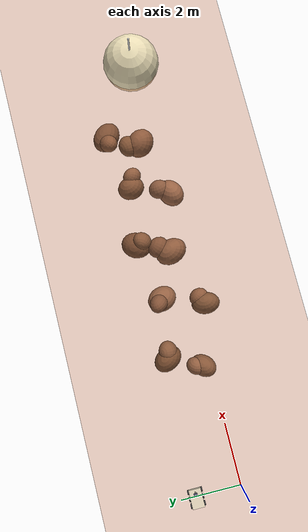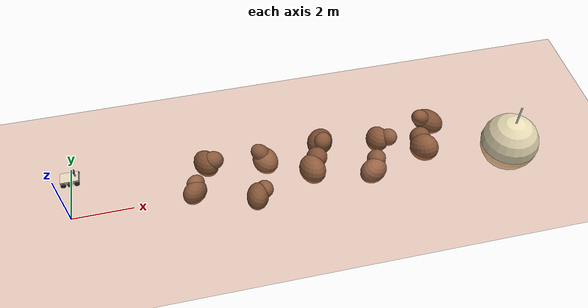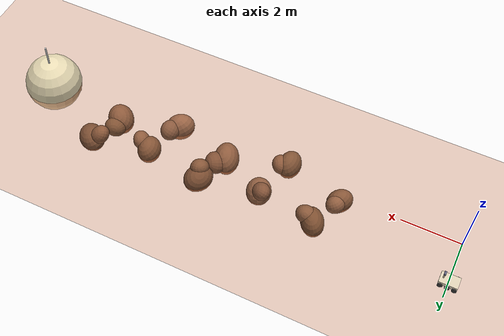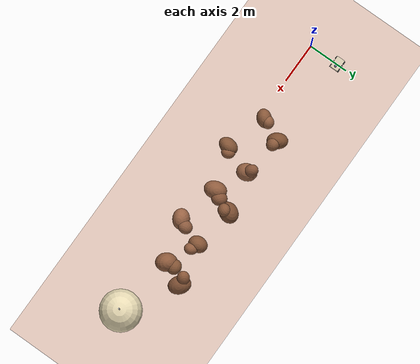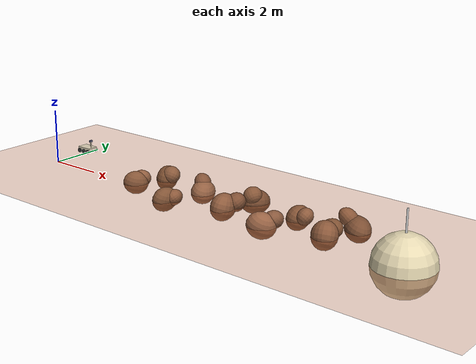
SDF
<sdf version="1.9">
 <world name="mars_mission">
  <plugin filename="gz-sim-physics-system" name="gz::sim::systems::Physics"/>
  <plugin filename="gz-sim-user-commands-system" name="gz::sim::systems::UserCommands"/>
  <plugin filename="gz-sim-scene-broadcaster-system" name="gz::sim::systems::SceneBroadcaster"/>
  <plugin filename="gz-sim-sensors-system" name="gz::sim::systems::Sensors">
   <render_engine>ogre2</render_engine>
  </plugin>
  <plugin filename="gz-sim-imu-system" name="gz::sim::systems::Imu"/>
  <plugin filename="gz-sim-contact-system" name="gz::sim::systems::Contact"/>
  <physics name="1ms" type="ignored">
   <max_step_size>0.001</max_step_size>
   <real_time_factor>1.0</real_time_factor>
   <real_time_update_rate>1000</real_time_update_rate>
  </physics>
  <scene>
   <ambient>0.3 0.2 0.15 1</ambient>
   <background>0.55 0.35 0.25 1</background>
   <sky><time>10</time><sunrise>6</sunrise><sunset>20</sunset></sky>
  </scene>
  <light type="directional" name="sun">
   <pose>15 -10 20 0 0.5 -0.5</pose>
   <diffuse>0.95 0.9 0.8 1</diffuse>
   <specular>0.3 0.3 0.3 1</specular>
   <direction>-0.5 0.3 -0.8</direction>
   <attenuation>
    <range>1000</range>
    <constant>0.9</constant>
    <linear>0.01</linear>
    <quadratic>0.001</quadratic>
   </attenuation>
  </light>
  <model name="mars_ground">
   <static>true</static>
   <link name="ground_link">
    <collision name="ground_collision">
     <geometry><plane><normal>0 0 1</normal><size>100 100</size></plane></geometry>
     <surface><friction><ode><mu>0.9</mu><mu2>0.9</mu2></ode></friction></surface>
    </collision>
    <visual name="ground_visual">
     <geometry><plane><normal>0 0 1</normal><size>100 100</size></plane></geometry>
     <material>
      <ambient>0.6 0.3 0.15 1</ambient>
      <diffuse>0.7 0.35 0.18 1</diffuse>
      <specular>0.05 0.05 0.05 1</specular>
     </material>
    </visual>
   </link>
  </model>
  <include><uri>model://habitat_dome</uri><name>habitat_dome</name><pose>15 0 0 0 0 0</pose></include>
  <model name="rock_01">
   <static>true</static>
   <pose>4.0 0.2 0 0.1 0.2 0.8</pose>
   <link name="rock_link">
    <visual name="blob_1">
     <geometry><ellipsoid><radii>0.45 0.35 0.42</radii></ellipsoid></geometry>
     <material><ambient>0.48 0.30 0.18 1</ambient><diffuse>0.53 0.34 0.22 1</diffuse></material>
    </visual>
    <collision name="blob_1_col">
     <geometry><ellipsoid><radii>0.45 0.35 0.42</radii></ellipsoid></geometry>
    </collision>
    <visual name="blob_2">
     <pose>0.2 0.15 0.15 0.4 0.1 0</pose>
     <geometry><ellipsoid><radii>0.32 0.28 0.30</radii></ellipsoid></geometry>
     <material><ambient>0.52 0.33 0.21 1</ambient><diffuse>0.57 0.37 0.25 1</diffuse></material>
    </visual>
    <collision name="blob_2_col">
     <pose>0.2 0.15 0.15 0.4 0.1 0</pose>
     <geometry><ellipsoid><radii>0.32 0.28 0.30</radii></ellipsoid></geometry>
    </collision>
   </link>
  </model>
  <model name="rock_02">
   <static>true</static>
   <pose>4.5 1.3 0 0.2 0.1 2.1</pose>
   <link name="rock_link">
    <visual name="blob_1">
     <geometry><ellipsoid><radii>0.50 0.38 0.45</radii></ellipsoid></geometry>
     <material><ambient>0.44 0.27 0.15 1</ambient><diffuse>0.49 0.31 0.19 1</diffuse></material>
    </visual>
    <collision name="blob_1_col">
     <geometry><ellipsoid><radii>0.50 0.38 0.45</radii></ellipsoid></geometry>
    </collision>
    <visual name="blob_2">
     <pose>-0.2 -0.15 0.2 0.5 0.2 1.0</pose>
     <geometry><ellipsoid><radii>0.35 0.30 0.32</radii></ellipsoid></geometry>
     <material><ambient>0.49 0.31 0.19 1</ambient><diffuse>0.54 0.35 0.23 1</diffuse></material>
    </visual>
    <collision name="blob_2_col">
     <pose>-0.2 -0.15 0.2 0.5 0.2 1.0</pose>
     <geometry><ellipsoid><radii>0.35 0.30 0.32</radii></ellipsoid></geometry>
    </collision>
   </link>
  </model>
  <model name="rock_03">
   <static>true</static>
   <pose>6.0 -0.4 0 0.3 0.15 1.5</pose>
   <link name="rock_link">
    <visual name="blob_1">
     <geometry><ellipsoid><radii>0.48 0.36 0.44</radii></ellipsoid></geometry>
     <material><ambient>0.46 0.29 0.17 1</ambient><diffuse>0.51 0.33 0.21 1</diffuse></material>
    </visual>
    <collision name="blob_1_col">
     <geometry><ellipsoid><radii>0.48 0.36 0.44</radii></ellipsoid></geometry>
    </collision>
    <visual name="blob_2">
     <pose>0.18 -0.2 0.18 0.6 0.3 0.5</pose>
     <geometry><ellipsoid><radii>0.33 0.27 0.30</radii></ellipsoid></geometry>
     <material><ambient>0.50 0.31 0.19 1</ambient><diffuse>0.55 0.35 0.23 1</diffuse></material>
    </visual>
    <collision name="blob_2_col">
     <pose>0.18 -0.2 0.18 0.6 0.3 0.5</pose>
     <geometry><ellipsoid><radii>0.33 0.27 0.30</radii></ellipsoid></geometry>
    </collision>
   </link>
  </model>
  <model name="rock_04">
   <static>true</static>
   <pose>6.5 1.0 0 0.15 0.3 0.4</pose>
   <link name="rock_link">
    <visual name="blob_1">
     <geometry><ellipsoid><radii>0.42 0.50 0.40</radii></ellipsoid></geometry>
     <material><ambient>0.53 0.34 0.22 1</ambient><diffuse>0.58 0.38 0.26 1</diffuse></material>
    </visual>
    <collision name="blob_1_col">
     <geometry><ellipsoid><radii>0.42 0.50 0.40</radii></ellipsoid></geometry>
    </collision>
    <visual name="blob_2">
     <pose>-0.15 0.22 0.22 0.3 0.5 0.8</pose>
     <geometry><ellipsoid><radii>0.30 0.35 0.28</radii></ellipsoid></geometry>
     <material><ambient>0.47 0.29 0.18 1</ambient><diffuse>0.52 0.33 0.22 1</diffuse></material>
    </visual>
    <collision name="blob_2_col">
     <pose>-0.15 0.22 0.22 0.3 0.5 0.8</pose>
     <geometry><ellipsoid><radii>0.30 0.35 0.28</radii></ellipsoid></geometry>
    </collision>
   </link>
  </model>
  <model name="rock_05">
   <static>true</static>
   <pose>8.0 0.3 0 0.2 0.25 1.9</pose>
   <link name="rock_link">
    <visual name="blob_1">
     <geometry><ellipsoid><radii>0.55 0.42 0.48</radii></ellipsoid></geometry>
     <material><ambient>0.51 0.32 0.20 1</ambient><diffuse>0.56 0.36 0.24 1</diffuse></material>
    </visual>
    <collision name="blob_1_col">
     <geometry><ellipsoid><radii>0.55 0.42 0.48</radii></ellipsoid></geometry>
    </collision>
    <visual name="blob_2">
     <pose>0.25 -0.3 0.25 0.7 0.2 0.3</pose>
     <geometry><ellipsoid><radii>0.38 0.32 0.35</radii></ellipsoid></geometry>
     <material><ambient>0.46 0.28 0.17 1</ambient><diffuse>0.51 0.32 0.21 1</diffuse></material>
    </visual>
    <collision name="blob_2_col">
     <pose>0.25 -0.3 0.25 0.7 0.2 0.3</pose>
     <geometry><ellipsoid><radii>0.38 0.32 0.35</radii></ellipsoid></geometry>
    </collision>
   </link>
  </model>
  <model name="rock_06">
   <static>true</static>
   <pose>8.5 1.4 0 0.1 0.4 2.7</pose>
   <link name="rock_link">
    <visual name="blob_1">
     <geometry><ellipsoid><radii>0.44 0.52 0.42</radii></ellipsoid></geometry>
     <material><ambient>0.43 0.26 0.15 1</ambient><diffuse>0.48 0.30 0.19 1</diffuse></material>
    </visual>
    <collision name="blob_1_col">
     <geometry><ellipsoid><radii>0.44 0.52 0.42</radii></ellipsoid></geometry>
    </collision>
    <visual name="blob_2">
     <pose>-0.25 0.2 0.2 0.4 0.3 1.2</pose>
     <geometry><ellipsoid><radii>0.32 0.28 0.30</radii></ellipsoid></geometry>
     <material><ambient>0.48 0.30 0.18 1</ambient><diffuse>0.53 0.34 0.22 1</diffuse></material>
    </visual>
    <collision name="blob_2_col">
     <pose>-0.25 0.2 0.2 0.4 0.3 1.2</pose>
     <geometry><ellipsoid><radii>0.32 0.28 0.30</radii></ellipsoid></geometry>
    </collision>
   </link>
  </model>
  <model name="rock_07">
   <static>true</static>
   <pose>10.0 -0.2 0 0.25 0.35 0.6</pose>
   <link name="rock_link">
    <visual name="blob_1">
     <geometry><ellipsoid><radii>0.50 0.40 0.46</radii></ellipsoid></geometry>
     <material><ambient>0.55 0.35 0.23 1</ambient><diffuse>0.60 0.39 0.27 1</diffuse></material>
    </visual>
    <collision name="blob_1_col">
     <geometry><ellipsoid><radii>0.50 0.40 0.46</radii></ellipsoid></geometry>
    </collision>
    <visual name="blob_2">
     <pose>0.3 0.25 0.2 0.5 0.3 0.9</pose>
     <geometry><ellipsoid><radii>0.36 0.30 0.33</radii></ellipsoid></geometry>
     <material><ambient>0.49 0.31 0.20 1</ambient><diffuse>0.54 0.35 0.24 1</diffuse></material>
    </visual>
    <collision name="blob_2_col">
     <pose>0.3 0.25 0.2 0.5 0.3 0.9</pose>
     <geometry><ellipsoid><radii>0.36 0.30 0.33</radii></ellipsoid></geometry>
    </collision>
   </link>
  </model>
  <model name="rock_08">
   <static>true</static>
   <pose>10.5 1.1 0 0.3 0.2 1.7</pose>
   <link name="rock_link">
    <visual name="blob_1">
     <geometry><ellipsoid><radii>0.46 0.38 0.43</radii></ellipsoid></geometry>
     <material><ambient>0.47 0.29 0.17 1</ambient><diffuse>0.52 0.33 0.21 1</diffuse></material>
    </visual>
    <collision name="blob_1_col">
     <geometry><ellipsoid><radii>0.46 0.38 0.43</radii></ellipsoid></geometry>
    </collision>
    <visual name="blob_2">
     <pose>-0.2 -0.28 0.22 0.3 0.4 0.4</pose>
     <geometry><ellipsoid><radii>0.33 0.27 0.30</radii></ellipsoid></geometry>
     <material><ambient>0.51 0.32 0.20 1</ambient><diffuse>0.56 0.36 0.24 1</diffuse></material>
    </visual>
    <collision name="blob_2_col">
     <pose>-0.2 -0.28 0.22 0.3 0.4 0.4</pose>
     <geometry><ellipsoid><radii>0.33 0.27 0.30</radii></ellipsoid></geometry>
    </collision>
   </link>
  </model>
  <model name="rock_09">
   <static>true</static>
   <pose>12.0 0.4 0 0.2 0.4 2.3</pose>
   <link name="rock_link">
    <visual name="blob_1">
     <geometry><ellipsoid><radii>0.52 0.44 0.48</radii></ellipsoid></geometry>
     <material><ambient>0.50 0.31 0.19 1</ambient><diffuse>0.55 0.35 0.23 1</diffuse></material>
    </visual>
    <collision name="blob_1_col">
     <geometry><ellipsoid><radii>0.52 0.44 0.48</radii></ellipsoid></geometry>
    </collision>
    <visual name="blob_2">
     <pose>0.28 -0.22 0.25 0.6 0.2 1.0</pose>
     <geometry><ellipsoid><radii>0.37 0.32 0.34</radii></ellipsoid></geometry>
     <material><ambient>0.45 0.28 0.16 1</ambient><diffuse>0.50 0.32 0.20 1</diffuse></material>
    </visual>
    <collision name="blob_2_col">
     <pose>0.28 -0.22 0.25 0.6 0.2 1.0</pose>
     <geometry><ellipsoid><radii>0.37 0.32 0.34</radii></ellipsoid></geometry>
    </collision>
   </link>
  </model>
  <model name="rock_10">
   <static>true</static>
   <pose>12.5 1.5 0 0.15 0.3 0.9</pose>
   <link name="rock_link">
    <visual name="blob_1">
     <geometry><ellipsoid><radii>0.43 0.55 0.40</radii></ellipsoid></geometry>
     <material><ambient>0.44 0.27 0.16 1</ambient><diffuse>0.49 0.31 0.20 1</diffuse></material>
    </visual>
    <collision name="blob_1_col">
     <geometry><ellipsoid><radii>0.43 0.55 0.40</radii></ellipsoid></geometry>
    </collision>
    <visual name="blob_2">
     <pose>-0.3 0.28 0.18 0.5 0.2 1.4</pose>
     <geometry><ellipsoid><radii>0.30 0.38 0.28</radii></ellipsoid></geometry>
     <material><ambient>0.49 0.30 0.18 1</ambient><diffuse>0.54 0.34 0.22 1</diffuse></material>
    </visual>
    <collision name="blob_2_col">
     <pose>-0.3 0.28 0.18 0.5 0.2 1.4</pose>
     <geometry><ellipsoid><radii>0.30 0.38 0.28</radii></ellipsoid></geometry>
    </collision>
   </link>
  </model>
  <include><uri>model://mars_rover</uri><name>rover</name><pose>0 1.5 0.12 0 0 0</pose></include>
 </world>
</sdf>

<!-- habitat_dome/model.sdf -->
<sdf version="1.9">
  <model name="habitat_dome">
    <static>true</static>
    <link name="dome_link">
      <visual name="dome_visual">
        <geometry>
          <sphere>
            <radius>1.0</radius>
          </sphere>
        </geometry>
        <material>
          <ambient>0.9 0.85 0.7 1</ambient>
          <diffuse>0.9 0.85 0.7 1</diffuse>
        </material>
      </visual>
      <collision name="dome_collision">
        <geometry>
          <sphere>
            <radius>1.0</radius>
          </sphere>
        </geometry>
      </collision>
      <!-- Sink half into ground so it looks like a hemisphere -->
      <pose>0 0 0 0 0 0</pose>
    </link>
    <!-- Flag pole on top for visibility -->
    <link name="flag_pole">
      <pose>0 0 1.0 0 0 0</pose>
      <visual name="pole_visual">
        <geometry>
          <cylinder>
            <radius>0.03</radius>
            <length>1.5</length>
          </cylinder>
        </geometry>
        <material>
          <ambient>0.8 0.8 0.8 1</ambient>
          <diffuse>0.8 0.8 0.8 1</diffuse>
        </material>
      </visual>
    </link>
    <joint name="pole_joint" type="fixed">
      <parent>dome_link</parent>
      <child>flag_pole</child>
    </joint>
  </model>
</sdf>

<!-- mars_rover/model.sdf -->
<sdf version="1.9">
  <model name="mars_rover">

    <!-- ── Chassis / Body ───────────────────────────────────────────────── -->
    <link name="base_link">
      <pose>0 0 0.075 0 0 0</pose>
      <inertial>
        <mass>8.0</mass>
        <inertia>
          <ixx>0.084</ixx>
          <iyy>0.258</iyy>
          <izz>0.320</izz>
          <ixy>0</ixy><ixz>0</ixz><iyz>0</iyz>
        </inertia>
      </inertial>
      <collision name="chassis_collision">
        <geometry>
          <box><size>0.6 0.4 0.15</size></box>
        </geometry>
        <surface>
          <friction>
            <ode><mu>0.8</mu><mu2>0.8</mu2></ode>
          </friction>
        </surface>
      </collision>
      <visual name="chassis_visual">
        <geometry>
          <box><size>0.6 0.4 0.15</size></box>
        </geometry>
        <material>
          <ambient>0.85 0.8 0.7 1</ambient>
          <diffuse>0.85 0.8 0.7 1</diffuse>
          <specular>0.15 0.15 0.15 1</specular>
        </material>
      </visual>

      <!-- 360 LiDAR sensor on top of body -->
      <sensor name="lidar_360" type="gpu_lidar">
        <pose>0 0 0.12 0 0 0</pose>
        <topic>rover_lidar</topic>
        <update_rate>5</update_rate>
        <lidar>
          <scan>
            <horizontal>
              <samples>360</samples>
              <resolution>1</resolution>
              <min_angle>-3.14159</min_angle>
              <max_angle>3.14159</max_angle>
            </horizontal>
            <vertical>
              <samples>1</samples>
              <resolution>1</resolution>
              <min_angle>0</min_angle>
              <max_angle>0</max_angle>
            </vertical>
          </scan>
          <range>
            <min>0.15</min>
            <max>12.0</max>
            <resolution>0.01</resolution>
          </range>
        </lidar>
        <always_on>true</always_on>
        <visualize>false</visualize>
      </sensor>
    </link>

    <!-- ── Instrument Mast ──────────────────────────────────────────────── -->
    <link name="mast_link">
      <pose>0.2 0 0.225 0 0 0</pose>
      <inertial>
        <mass>0.3</mass>
        <inertia>
          <ixx>0.00250</ixx><iyy>0.00250</iyy><izz>0.000050</izz>
          <ixy>0</ixy><ixz>0</ixz><iyz>0</iyz>
        </inertia>
      </inertial>
      <visual name="mast_visual">
        <pose>0 0 0 0 0 0</pose>
        <geometry>
          <cylinder>
            <radius>0.025</radius>
            <length>0.3</length>
          </cylinder>
        </geometry>
        <material>
          <ambient>0.75 0.7 0.6 1</ambient>
          <diffuse>0.75 0.7 0.6 1</diffuse>
        </material>
      </visual>
    </link>
    <joint name="mast_joint" type="fixed">
      <parent>base_link</parent>
      <child>mast_link</child>
    </joint>

    <!-- ── Camera Head on Mast ──────────────────────────────────────────── -->
    <link name="camera_head_link">
      <pose>0.2 0 0.4 0 0 0</pose>
      <inertial>
        <mass>0.1</mass>
        <inertia>
          <ixx>0.000017</ixx><iyy>0.000017</iyy><izz>0.000017</izz>
          <ixy>0</ixy><ixz>0</ixz><iyz>0</iyz>
        </inertia>
      </inertial>
      <visual name="head_visual">
        <geometry>
          <box><size>0.07 0.12 0.07</size></box>
        </geometry>
        <material>
          <ambient>0.3 0.3 0.4 1</ambient>
          <diffuse>0.35 0.35 0.45 1</diffuse>
        </material>
      </visual>
    </link>
    <joint name="camera_head_joint" type="fixed">
      <parent>base_link</parent>
      <child>camera_head_link</child>
    </joint>

    <!-- Front-Left Wheel -->
    <link name="front_left_wheel">
      <pose>0.22 0.22 0.005 1.5708 0 0</pose>
      <inertial>
        <mass>0.5</mass>
        <inertia>
          <ixx>0.000820</ixx><iyy>0.000820</iyy><izz>0.001600</izz>
          <ixy>0</ixy><ixz>0</ixz><iyz>0</iyz>
        </inertia>
      </inertial>
      <collision name="collision">
        <geometry><cylinder><radius>0.08</radius><length>0.05</length></cylinder></geometry>
        <surface><friction><ode><mu>1.2</mu><mu2>1.2</mu2></ode></friction></surface>
      </collision>
      <visual name="visual">
        <geometry><cylinder><radius>0.08</radius><length>0.05</length></cylinder></geometry>
        <material><ambient>0.15 0.15 0.15 1</ambient><diffuse>0.2 0.2 0.2 1</diffuse></material>
      </visual>
    </link>
    <joint name="front_left_wheel_joint" type="revolute">
      <parent>base_link</parent>
      <child>front_left_wheel</child>
      <axis>
        <xyz expressed_in="__model__">0 1 0</xyz>
        <dynamics><damping>0.005</damping><friction>0.01</friction></dynamics>
        <limit><lower>-1e+16</lower><upper>1e+16</upper></limit>
      </axis>
    </joint>

    <!-- Front-Right Wheel -->
    <link name="front_right_wheel">
      <pose>0.22 -0.22 0.005 1.5708 0 0</pose>
      <inertial>
        <mass>0.5</mass>
        <inertia>
          <ixx>0.000820</ixx><iyy>0.000820</iyy><izz>0.001600</izz>
          <ixy>0</ixy><ixz>0</ixz><iyz>0</iyz>
        </inertia>
      </inertial>
      <collision name="collision">
        <geometry><cylinder><radius>0.08</radius><length>0.05</length></cylinder></geometry>
        <surface><friction><ode><mu>1.2</mu><mu2>1.2</mu2></ode></friction></surface>
      </collision>
      <visual name="visual">
        <geometry><cylinder><radius>0.08</radius><length>0.05</length></cylinder></geometry>
        <material><ambient>0.15 0.15 0.15 1</ambient><diffuse>0.2 0.2 0.2 1</diffuse></material>
      </visual>
    </link>
    <joint name="front_right_wheel_joint" type="revolute">
      <parent>base_link</parent>
      <child>front_right_wheel</child>
      <axis>
        <xyz expressed_in="__model__">0 1 0</xyz>
        <dynamics><damping>0.005</damping><friction>0.01</friction></dynamics>
        <limit><lower>-1e+16</lower><upper>1e+16</upper></limit>
      </axis>
    </joint>

    <!-- Mid-Left Wheel (driven by DiffDrive) -->
    <link name="left_mid_wheel">
      <pose>0.0 0.22 0.005 1.5708 0 0</pose>
      <inertial>
        <mass>0.5</mass>
        <inertia>
          <ixx>0.000820</ixx><iyy>0.000820</iyy><izz>0.001600</izz>
          <ixy>0</ixy><ixz>0</ixz><iyz>0</iyz>
        </inertia>
      </inertial>
      <collision name="collision">
        <geometry><cylinder><radius>0.08</radius><length>0.05</length></cylinder></geometry>
        <surface><friction><ode><mu>1.5</mu><mu2>1.5</mu2></ode></friction></surface>
      </collision>
      <visual name="visual">
        <geometry><cylinder><radius>0.08</radius><length>0.05</length></cylinder></geometry>
        <material><ambient>0.1 0.1 0.1 1</ambient><diffuse>0.15 0.15 0.15 1</diffuse></material>
      </visual>
    </link>
    <joint name="left_mid_wheel_joint" type="revolute">
      <parent>base_link</parent>
      <child>left_mid_wheel</child>
      <axis>
        <xyz expressed_in="__model__">0 1 0</xyz>
        <dynamics><damping>0.005</damping><friction>0.01</friction></dynamics>
        <limit><lower>-1e+16</lower><upper>1e+16</upper></limit>
      </axis>
    </joint>

    <!-- Mid-Right Wheel (driven by DiffDrive) -->
    <link name="right_mid_wheel">
      <pose>0.0 -0.22 0.005 1.5708 0 0</pose>
      <inertial>
        <mass>0.5</mass>
        <inertia>
          <ixx>0.000820</ixx><iyy>0.000820</iyy><izz>0.001600</izz>
          <ixy>0</ixy><ixz>0</ixz><iyz>0</iyz>
        </inertia>
      </inertial>
      <collision name="collision">
        <geometry><cylinder><radius>0.08</radius><length>0.05</length></cylinder></geometry>
        <surface><friction><ode><mu>1.5</mu><mu2>1.5</mu2></ode></friction></surface>
      </collision>
      <visual name="visual">
        <geometry><cylinder><radius>0.08</radius><length>0.05</length></cylinder></geometry>
        <material><ambient>0.1 0.1 0.1 1</ambient><diffuse>0.15 0.15 0.15 1</diffuse></material>
      </visual>
    </link>
    <joint name="right_mid_wheel_joint" type="revolute">
      <parent>base_link</parent>
      <child>right_mid_wheel</child>
      <axis>
        <xyz expressed_in="__model__">0 1 0</xyz>
        <dynamics><damping>0.005</damping><friction>0.01</friction></dynamics>
        <limit><lower>-1e+16</lower><upper>1e+16</upper></limit>
      </axis>
    </joint>

    <!-- Rear-Left Wheel -->
    <link name="rear_left_wheel">
      <pose>-0.22 0.22 0.005 1.5708 0 0</pose>
      <inertial>
        <mass>0.5</mass>
        <inertia>
          <ixx>0.000820</ixx><iyy>0.000820</iyy><izz>0.001600</izz>
          <ixy>0</ixy><ixz>0</ixz><iyz>0</iyz>
        </inertia>
      </inertial>
      <collision name="collision">
        <geometry><cylinder><radius>0.08</radius><length>0.05</length></cylinder></geometry>
        <surface><friction><ode><mu>1.2</mu><mu2>1.2</mu2></ode></friction></surface>
      </collision>
      <visual name="visual">
        <geometry><cylinder><radius>0.08</radius><length>0.05</length></cylinder></geometry>
        <material><ambient>0.15 0.15 0.15 1</ambient><diffuse>0.2 0.2 0.2 1</diffuse></material>
      </visual>
    </link>
    <joint name="rear_left_wheel_joint" type="revolute">
      <parent>base_link</parent>
      <child>rear_left_wheel</child>
      <axis>
        <xyz expressed_in="__model__">0 1 0</xyz>
        <dynamics><damping>0.005</damping><friction>0.01</friction></dynamics>
        <limit><lower>-1e+16</lower><upper>1e+16</upper></limit>
      </axis>
    </joint>

    <!-- Rear-Right Wheel -->
    <link name="rear_right_wheel">
      <pose>-0.22 -0.22 0.005 1.5708 0 0</pose>
      <inertial>
        <mass>0.5</mass>
        <inertia>
          <ixx>0.000820</ixx><iyy>0.000820</iyy><izz>0.001600</izz>
          <ixy>0</ixy><ixz>0</ixz><iyz>0</iyz>
        </inertia>
      </inertial>
      <collision name="collision">
        <geometry><cylinder><radius>0.08</radius><length>0.05</length></cylinder></geometry>
        <surface><friction><ode><mu>1.2</mu><mu2>1.2</mu2></ode></friction></surface>
      </collision>
      <visual name="visual">
        <geometry><cylinder><radius>0.08</radius><length>0.05</length></cylinder></geometry>
        <material><ambient>0.15 0.15 0.15 1</ambient><diffuse>0.2 0.2 0.2 1</diffuse></material>
      </visual>
    </link>
    <joint name="rear_right_wheel_joint" type="revolute">
      <parent>base_link</parent>
      <child>rear_right_wheel</child>
      <axis>
        <xyz expressed_in="__model__">0 1 0</xyz>
        <dynamics><damping>0.005</damping><friction>0.01</friction></dynamics>
        <limit><lower>-1e+16</lower><upper>1e+16</upper></limit>
      </axis>
    </joint>

    <!-- ── Plugins ───────────────────────────────────────────────────────── -->

    <!-- DiffDrive on mid wheel pair -->
    <plugin filename="gz-sim-diff-drive-system"
            name="gz::sim::systems::DiffDrive">
      <left_joint>left_mid_wheel_joint</left_joint>
      <right_joint>right_mid_wheel_joint</right_joint>
      <wheel_separation>0.44</wheel_separation>
      <wheel_radius>0.08</wheel_radius>
      <topic>cmd_vel</topic>
      <odom_topic>rover_odom</odom_topic>
      <odom_publish_frequency>10</odom_publish_frequency>
      <frame_id>odom</frame_id>
      <child_frame_id>base_link</child_frame_id>
      <min_velocity>-0.6</min_velocity>
      <max_velocity>0.6</max_velocity>
      <min_acceleration>-1.5</min_acceleration>
      <max_acceleration>1.5</max_acceleration>
    </plugin>

    <!-- DiffDrive on front wheel pair — 6WD: same cmd_vel, separate odom topic -->
    <plugin filename="gz-sim-diff-drive-system"
            name="gz::sim::systems::DiffDrive">
      <left_joint>front_left_wheel_joint</left_joint>
      <right_joint>front_right_wheel_joint</right_joint>
      <wheel_separation>0.44</wheel_separation>
      <wheel_radius>0.08</wheel_radius>
      <topic>cmd_vel</topic>
      <odom_topic>rover_odom_front</odom_topic>
      <odom_publish_frequency>0</odom_publish_frequency>
      <frame_id>odom</frame_id>
      <child_frame_id>base_link_front</child_frame_id>
      <min_velocity>-0.6</min_velocity>
      <max_velocity>0.6</max_velocity>
      <min_acceleration>-1.5</min_acceleration>
      <max_acceleration>1.5</max_acceleration>
    </plugin>

    <!-- DiffDrive on rear wheel pair — 6WD: same cmd_vel, separate odom topic -->
    <plugin filename="gz-sim-diff-drive-system"
            name="gz::sim::systems::DiffDrive">
      <left_joint>rear_left_wheel_joint</left_joint>
      <right_joint>rear_right_wheel_joint</right_joint>
      <wheel_separation>0.44</wheel_separation>
      <wheel_radius>0.08</wheel_radius>
      <topic>cmd_vel</topic>
      <odom_topic>rover_odom_rear</odom_topic>
      <odom_publish_frequency>0</odom_publish_frequency>
      <frame_id>odom</frame_id>
      <child_frame_id>base_link_rear</child_frame_id>
      <min_velocity>-0.6</min_velocity>
      <max_velocity>0.6</max_velocity>
      <min_acceleration>-1.5</min_acceleration>
      <max_acceleration>1.5</max_acceleration>
    </plugin>

    <!-- Joint state publisher -->
    <plugin filename="gz-sim-joint-state-publisher-system"
            name="gz::sim::systems::JointStatePublisher">
      <topic>rover_joint_states</topic>
      <joint_name>front_left_wheel_joint</joint_name>
      <joint_name>front_right_wheel_joint</joint_name>
      <joint_name>left_mid_wheel_joint</joint_name>
      <joint_name>right_mid_wheel_joint</joint_name>
      <joint_name>rear_left_wheel_joint</joint_name>
      <joint_name>rear_right_wheel_joint</joint_name>
    </plugin>

  </model>
</sdf>
